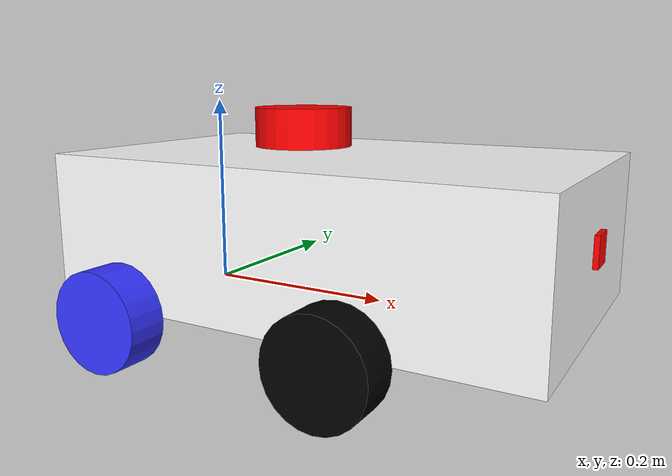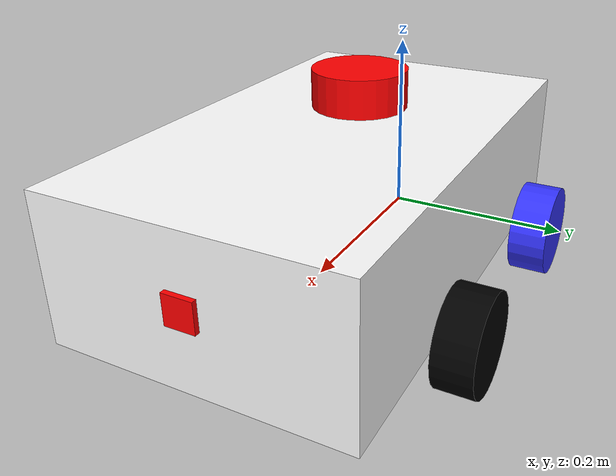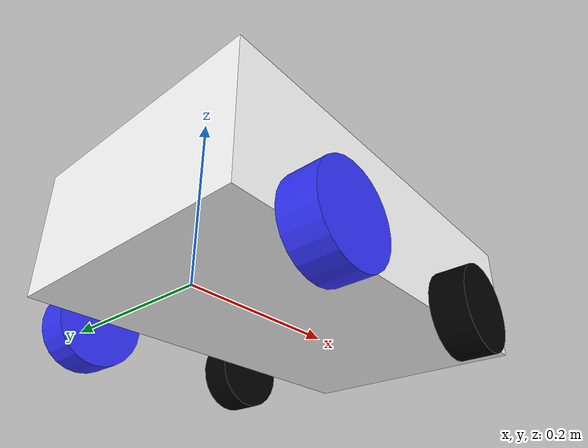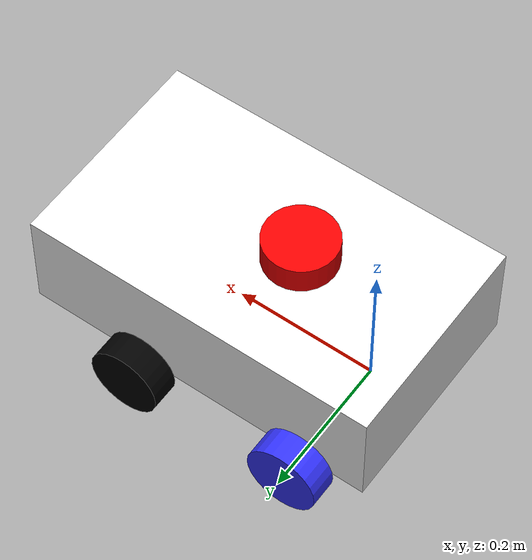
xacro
<?xml version="1.0"?>
<robot xmlns:xacro="http://www.ros.org/wiki/xacro"  name="robot">

    <xacro:include filename = "robot_core.xacro" />

    <xacro:include filename = "gazebo_control.xacro"/>

    <xacro:include filename = "lidar.xacro"/>

    <xacro:include filename = "camera.xacro"/>

</robot>

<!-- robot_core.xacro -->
<robot xmlns:xacro="http://www.ros.org/wiki/xacro">

    <xacro:include filename="inertial_macros.xacro"/>

    <material name="white">
        <color rgba = "1 1 1 1"/>
    </material>

    <material name= "orange">
        <color rgba="1 0.3 0.1 1"/>
    </material>
    <material name="blue">
        <color rgba=".2 .2 1 1" />
    </material>

    <material name="black">
        <color rgba="0 0 0 1"/>
    </material>

    <material name='red'>
       <color rgba="1 0 0 1"/>
    </material>
    <!-- BASE LINK -->
    <link name="base_link">

    </link>
    <!-- CHASSIS LINK -->
    <joint name= "chassis_joint" type = "fixed">
        <parent link="base_link"/>
        <child link="chassis"/>
        <origin xyz="0.01 0 0"/>
    </joint>

    <link name ="chassis">
        <visual>
            <origin xyz="0.15 0 0.075"/>
            <geometry>
                <box size="0.5 0.3 0.15"/>
            </geometry>
            <material name="white"/>
        </visual>
        <collision>
            <origin xyz="0.15 0 0.075"/>
            <geometry>
                <box size="0.5 0.3 0.15"/>
            </geometry>

        </collision>

        <xacro:inertial_box mass = "0.5" x="0.3" y="0.3" z="0.15">
            <origin xyz="0.15 0 0.75" rpy="0 0 0"/>
        </xacro:inertial_box>
    </link>
    <gazebo reference='chassis'>
        <material>Gazebo/White</material>
    </gazebo>

    <!--LEFT WHEEL LINK-->

    <joint name='left_wheel_joint' type='continuous'>
        <parent link = 'base_link'/>
        <child link='left_wheel'/>
        <origin xyz = '0 0.175 0' rpy = '-${pi/2} 0 0'/>
        <axis xyz = '0 0 1'/>
    </joint>

    <link name = 'left_wheel'>
        <visual>
            <geometry>
                <cylinder radius='0.05' length='0.04'/>
            </geometry>
            <material name='blue'/>
        </visual>
        <collision>
            <geometry>
                <cylinder radius='0.05' length='0.04'/>
            </geometry>

        </collision>
        <xacro:inertial_cylinder mass='0.1' length='.04' radius='.05'>
            <origin xyz='0 0 0' rpy='0 0 0'/>
        </xacro:inertial_cylinder>
    </link>
    <gazebo reference='left_wheel'>
        <material>Gazebo/Blue</material>
    </gazebo>
    <!--RIGHT WHEEL LINK-->

    <joint name='right_wheel_joint' type='continuous'>
        <parent link = 'base_link'/>
        <child link='right_wheel'/>
        <origin xyz = '0 -0.175 0' rpy = '${pi/2} 0 0'/>
        <axis xyz = '0 0 -1'/>
    </joint>

    <link name = 'right_wheel'>
        <visual>
            <geometry>
                <cylinder radius='0.05' length='0.04'/>
            </geometry>
            <material name='blue'/>
        </visual>
        <collision>
            <geometry>
                <cylinder radius='0.05' length='0.04'/>
            </geometry>

        </collision>
        <xacro:inertial_cylinder mass='0.1' length='.04' radius='.05'>
            <origin xyz='0 0 0' rpy='0 0 0'/>
        </xacro:inertial_cylinder>
    </link>
    <gazebo reference='right_wheel'>
        <material>Gazebo/Blue</material>
    </gazebo>

    <!--LEFT CASTER WHEEL LINK-->
    <joint name='L_caster_wheel_joint' type = 'fixed'>
        <parent link='base_link'/>
        <child link='L_caster_wheel'/>
        <origin xyz = '0.24 0.175 0' rpy = '-${pi/2} 0 0'/>

    </joint>

    <link name = 'L_caster_wheel'>
        <visual>
            <geometry>
                <cylinder radius = '0.05' length ='0.04'/>
            </geometry>
            <material name = 'black'/>
        </visual>
        <collision>
            <geometry>
                <cylinder radius = '0.05' length ='0.04'/>
            </geometry>

        </collision>
        <xacro:inertial_cylinder mass='0.1' length='.04' radius='.05'>
            <origin xyz='0 0 0' rpy='0 0 0'/>
        </xacro:inertial_cylinder>
    </link>
    <gazebo reference='L_caster_wheel'>
        <material>Gazebo/Black</material>
        <mu1 value='0.001'/>
        <mu2 value='0.001'/>
    </gazebo>
        <!--RIGHT CASTER WHEEL LINK-->
    <joint name='R_caster_wheel_joint' type = 'fixed'>
        <parent link='base_link'/>
        <child link='R_caster_wheel'/>
        <origin xyz = '0.24 -0.175 0' rpy = '${pi/2} 0 0'/>

    </joint>

    <link name = 'R_caster_wheel'>
        <visual>
            <geometry>
                <cylinder radius = '0.05' length ='0.04'/>
            </geometry>
            <material name = 'black'/>
        </visual>
        <collision>
            <geometry>
                <cylinder radius = '0.05' length ='0.04'/>
            </geometry>

        </collision>
        <xacro:inertial_cylinder mass='0.1' length='.04' radius='.05'>
            <origin xyz='0 0 0' rpy='0 0 0'/>
        </xacro:inertial_cylinder>
    </link>
    <gazebo reference='R_caster_wheel'>
        <material>Gazebo/Black</material>
        <mu1 value='0.001'/>
        <mu2 value='0.001'/>
    </gazebo>
</robot>

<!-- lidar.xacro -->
<robot xmlns:xacro="http://www.ros.org/wiki/xacro">

    <joint name='laser_joint' type='fixed'>
        <parent link="chassis"/>
        <child link="laser_frame"/>
        <origin xyz="0.1 0.0 0.175" rpy="0.0 0.0 0.0"/>
    </joint>

    <link name='laser_frame'>
        <visual>
            <geometry>
                <cylinder radius='0.05' length='0.04'/>
            </geometry>
            <material name='red'/>
        </visual>
        <collision>
            <geometry>
                <cylinder radius='0.05' length='0.04'/>
            </geometry>

        </collision>
        <xacro:inertial_cylinder mass='0.1' length='.04' radius='.05'>
            <origin xyz='0 0 0' rpy='0 0 0'/>
        </xacro:inertial_cylinder>
    </link>

    <gazebo reference ='laser_frame'>
        <material>Gazebo/Red</material>
        <sensor name='laser' type='ray'>
            <pose> 0 0 0 0 0 0 </pose>
            <visualize>true</visualize>
            <update_rate>10</update_rate>
            <ray>
                <scan>
                    <horizontal>
                        <samples>360</samples>
                        <resolution>1</resolution>
                        <min_angle>-3.14</min_angle>
                        <max_angle>3.14</max_angle>
                    </horizontal>
                </scan>
                <range>
                    <min>0.3</min>
                    <max>12</max>
                    <resolution>0.01</resolution>
                </range>
            </ray>
            <plugin name='laser_controller' filename='libgazebo_ros_ray_sensor.so'>
                <ros>
                    <argument>~/out:=scan</argument>
                </ros>
                <output_type>sensor_msgs/LaserScan</output_type>
                <frame_name>laser_frame</frame_name>
            </plugin>

        </sensor>

    </gazebo>

</robot>

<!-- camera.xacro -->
<robot xmlns:xacro="http://www.ros.org/wiki/xacro">

    <joint name='camera_joint' type='fixed'>
        <parent link="chassis"/>
        <child link="camera_link"/>
        <origin xyz="0.40 0.0 0.08" rpy="0.0 0.0 0.0"/>
    </joint>

    <link name='camera_link'>
        <visual>
            <geometry>
                <box size="0.010 0.030 0.030"/>
            </geometry>
            <material name='red'/>
        </visual>
    </link>

    <joint name='camera_optical_joint' type='fixed'>
        <parent link="camera_link"/>
        <child link="camera_link_optical"/>
        <origin xyz="0 0 0" rpy="${-pi/2} 0.0 ${-pi/2}"/>
    </joint>
    <link name='camera_link_optical'></link>

    <gazebo reference ='camera_link'>
        <material>Gazebo/Red</material>
        <sensor name='camera' type='camera'>
            <pose> 0 0 0 0 0 0 </pose>
            <visualize>true</visualize>
            <update_rate>10</update_rate>
            <camera>
                <horizontal_fov>1.089</horizontal_fov>
                <image>
                    <format>R8G8B8</format>
                    <width>640</width>
                    <height>480</height>
                </image>
                <clip>
                    <near>0.05</near>
                    <far>8.0</far>
                </clip>
            </camera>
            <plugin name='camera_controller' filename='libgazebo_ros_camera.so'>
                <frame_name>camera_link_optical</frame_name>
            </plugin>

        </sensor>

    </gazebo>

</robot>
